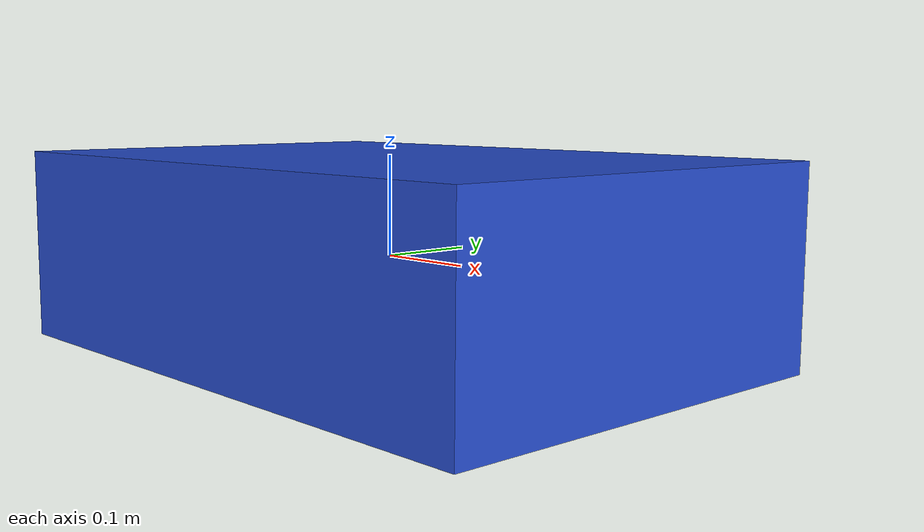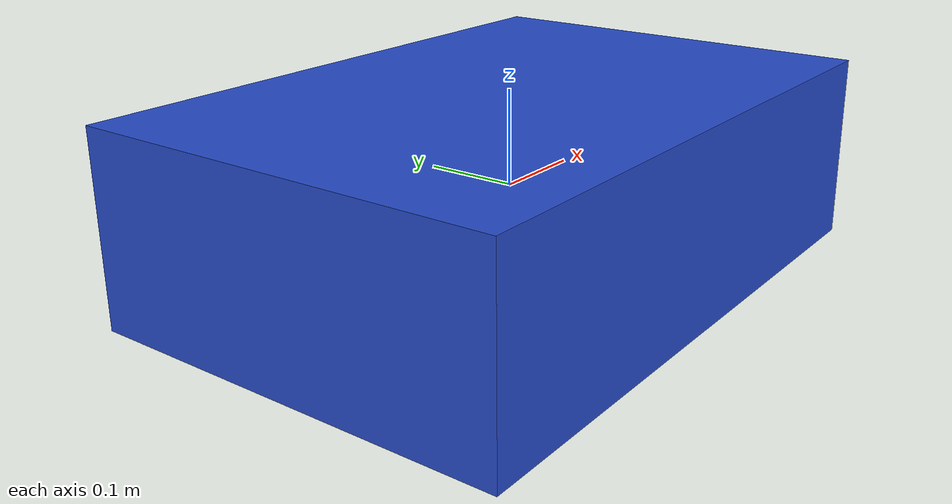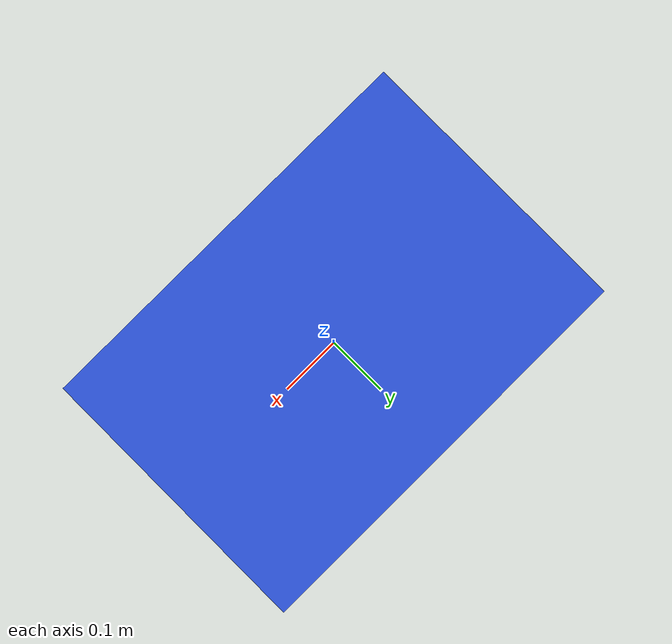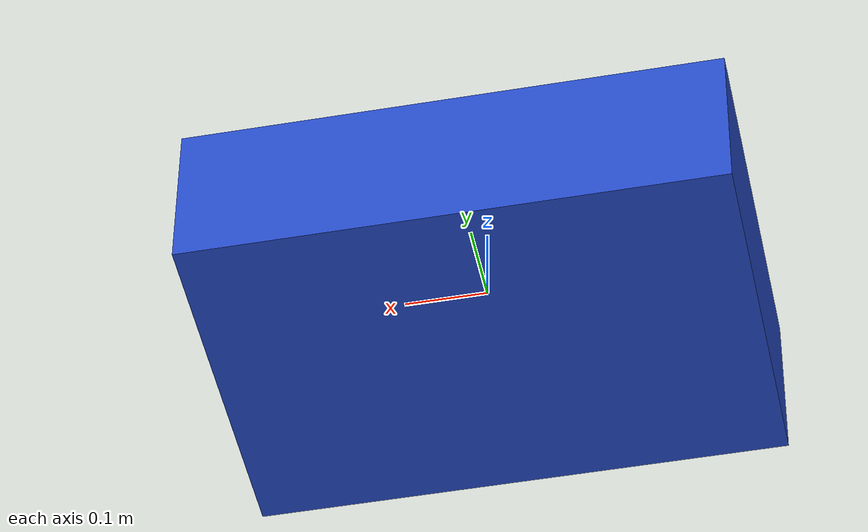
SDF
<?xml version="1.0" encoding="UTF-8"?>
<sdf version='1.4'>
  <model name="baggage_B_0.2">
      <static>true</static>
      <link name="link">
         <collision name="collision">
            <geometry>
               <box>
                  <size>0.65 0.45 0.2</size>
               </box>
            </geometry>
         </collision>
         <visual name="visual">
            <cast_shadows>false</cast_shadows>
            <geometry>
               <box>
                  <size>0.65 0.45 0.2</size>
               </box>
            </geometry>
            <material>
               <script>
                  <uri>file://media/materials/scripts/gazebo.material</uri>
                  <name>Gazebo/Blue</name>
               </script>
            </material>
         </visual>
      </link>
  </model>
</sdf>
